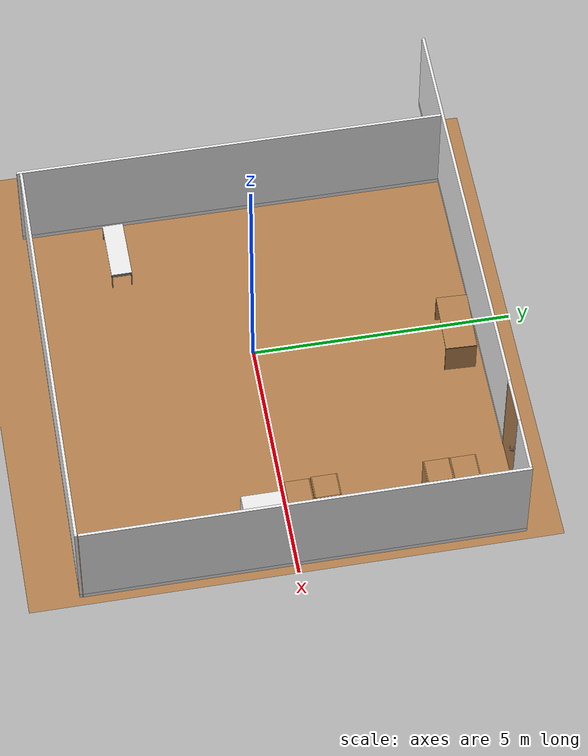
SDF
<sdf version="1.6">
 <world name="default">
  <include><uri>model://sun</uri></include>
  <physics type="ode"/>
  <scene><ambient>0.4 0.4 0.4 1</ambient><background>0.7 0.7 0.7 1</background><shadows>0</shadows></scene>
  <model name="wrc_ground_plane">
   <static>1</static>
   <link name="link">
    <collision name="collision">
     <geometry><plane><normal>0 0 1</normal><size>10 10</size></plane></geometry>
     <surface>
      <contact><collide_bitmask>65535</collide_bitmask></contact>
      <friction><ode><mu>100</mu><mu2>50</mu2></ode></friction>
     </surface>
    </collision>
    <visual name="visual">
     <cast_shadows>0</cast_shadows>
     <geometry><plane><normal>0 0 1</normal><size>10 10</size></plane></geometry>
     <material>
      <script><uri>model://wrc_ground_plane/materials/wood.material</uri><name>WRS/WoodFloor</name></script>
     </material>
    </visual>
   </link>
  </model>
  <model name="wrc_bookshelf">
   <static>1</static>
   <link name="link">
    <inertial><mass>1</mass></inertial>
    <collision name="back">
     <pose>0 0.005 1.01 0 -0 0</pose>
     <geometry><box><size>0.8 0.01 2.02</size></box></geometry>
    </collision>
    <visual name="back_v">
     <pose>0 0.14 1.01 0 -0 0</pose>
     <geometry><box><size>0.8 0.01 2.02</size></box></geometry>
     <material>
      <script><uri>file://media/materials/scripts/gazebo.material</uri><name>Gazebo/White</name></script>
     </material>
    </visual>
    <collision name="left_side">
     <pose>0.4 0 1.01 0 -0 0</pose>
     <geometry><box><size>0.02 0.28 2.02</size></box></geometry>
    </collision>
    <visual name="left_side_v">
     <pose>0.4 0 1.01 0 -0 0</pose>
     <geometry><box><size>0.02 0.28 2.02</size></box></geometry>
     <material>
      <script><uri>file://media/materials/scripts/gazebo.material</uri><name>Gazebo/White</name></script>
     </material>
    </visual>
    <collision name="right_side">
     <pose>-0.4 0 1.01 0 -0 0</pose>
     <geometry><box><size>0.02 0.28 2.02</size></box></geometry>
    </collision>
    <visual name="right_side_v">
     <pose>-0.4 0 1.01 0 -0 0</pose>
     <geometry><box><size>0.02 0.28 2.02</size></box></geometry>
     <material>
      <script><uri>file://media/materials/scripts/gazebo.material</uri><name>Gazebo/White</name></script>
     </material>
    </visual>
    <collision name="bottom">
     <pose>0 0 0.03 0 -0 0</pose>
     <geometry><box><size>0.8 0.28 0.06</size></box></geometry>
    </collision>
    <visual name="bottom_v">
     <pose>0 0 0.03 0 -0 0</pose>
     <geometry><box><size>0.8 0.28 0.06</size></box></geometry>
     <material>
      <script><uri>file://media/materials/scripts/gazebo.material</uri><name>Gazebo/White</name></script>
     </material>
    </visual>
    <collision name="top">
     <pose>0 0 2.01 0 -0 0</pose>
     <geometry><box><size>0.8 0.28 0.02</size></box></geometry>
    </collision>
    <visual name="top_v">
     <pose>0 0 2.01 0 -0 0</pose>
     <geometry><box><size>0.8 0.28 0.02</size></box></geometry>
     <material>
      <script><uri>file://media/materials/scripts/gazebo.material</uri><name>Gazebo/White</name></script>
     </material>
    </visual>
    <collision name="slit1">
     <pose>0 0 0.49 0 -0 0</pose>
     <geometry><box><size>0.8 0.28 0.02</size></box></geometry>
    </collision>
    <visual name="slit1_v">
     <pose>0 0 0.49 0 -0 0</pose>
     <geometry><box><size>0.8 0.28 0.02</size></box></geometry>
     <material>
      <script><uri>file://media/materials/scripts/gazebo.material</uri><name>Gazebo/White</name></script>
     </material>
    </visual>
    <collision name="slit2">
     <pose>0 0 0.79 0 -0 0</pose>
     <geometry><box><size>0.8 0.28 0.02</size></box></geometry>
    </collision>
    <visual name="slit2_v">
     <pose>0 0 0.79 0 -0 0</pose>
     <geometry><box><size>0.8 0.28 0.02</size></box></geometry>
     <material>
      <script><uri>file://media/materials/scripts/gazebo.material</uri><name>Gazebo/White</name></script>
     </material>
    </visual>
    <collision name="slit3">
     <pose>0 0 1.04 0 -0 0</pose>
     <geometry><box><size>0.8 0.28 0.02</size></box></geometry>
    </collision>
    <visual name="slit3_v">
     <pose>0 0 1.04 0 -0 0</pose>
     <geometry><box><size>0.8 0.28 0.02</size></box></geometry>
     <material>
      <script><uri>file://media/materials/scripts/gazebo.material</uri><name>Gazebo/White</name></script>
     </material>
    </visual>
   </link>
   <pose>4.60244 -0.572328 0 0 0 -1.57</pose>
  </model>
  <model name="wrc_long_table_0">
   <static>1</static>
   <link name="link">
    <inertial><mass>1</mass></inertial>
    <collision name="top">
     <pose>0 0 0.39 0 -0 0</pose>
     <geometry><box><size>1.2 0.4 0.02</size></box></geometry>
    </collision>
    <visual name="top_v">
     <pose>0 0 0.39 0 -0 0</pose>
     <geometry><box><size>1.2 0.4 0.02</size></box></geometry>
     <material>
      <script><uri>file://media/materials/scripts/gazebo.material</uri><name>Gazebo/White</name></script>
     </material>
    </visual>
    <collision name="leg1">
     <pose>0.59 0.19 0.185 0 -0 0</pose>
     <geometry><box><size>0.02 0.02 0.4</size></box></geometry>
    </collision>
    <visual name="leg1_v">
     <pose>0.59 0.19 0.185 0 -0 0</pose>
     <geometry><box><size>0.02 0.02 0.4</size></box></geometry>
     <material>
      <script><uri>file://media/materials/scripts/gazebo.material</uri><name>Gazebo/Gray</name></script>
     </material>
    </visual>
    <collision name="leg2">
     <pose>-0.59 0.19 0.185 0 -0 0</pose>
     <geometry><box><size>0.02 0.02 0.4</size></box></geometry>
    </collision>
    <visual name="leg2_v">
     <pose>-0.59 0.19 0.185 0 -0 0</pose>
     <geometry><box><size>0.02 0.02 0.4</size></box></geometry>
     <material>
      <script><uri>file://media/materials/scripts/gazebo.material</uri><name>Gazebo/Gray</name></script>
     </material>
    </visual>
    <collision name="leg3">
     <pose>0.59 -0.19 0.185 0 -0 0</pose>
     <geometry><box><size>0.02 0.02 0.4</size></box></geometry>
    </collision>
    <visual name="leg3_v">
     <pose>0.59 -0.19 0.185 0 -0 0</pose>
     <geometry><box><size>0.02 0.02 0.4</size></box></geometry>
     <material>
      <script><uri>file://media/materials/scripts/gazebo.material</uri><name>Gazebo/Gray</name></script>
     </material>
    </visual>
    <collision name="leg4">
     <pose>-0.59 -0.19 0.185 0 -0 0</pose>
     <geometry><box><size>0.02 0.02 0.4</size></box></geometry>
    </collision>
    <visual name="leg4_v">
     <pose>-0.59 -0.19 0.185 0 -0 0</pose>
     <geometry><box><size>0.02 0.02 0.4</size></box></geometry>
     <material>
      <script><uri>file://media/materials/scripts/gazebo.material</uri><name>Gazebo/Gray</name></script>
     </material>
    </visual>
    <collision name="side_panel1">
     <pose>0.575 0 0.32 0 -0 0</pose>
     <geometry><box><size>0.01 0.4 0.04</size></box></geometry>
    </collision>
    <visual name="side_panel1_v">
     <pose>0.575 0 0.32 0 -0 0</pose>
     <geometry><box><size>0.01 0.4 0.04</size></box></geometry>
     <material>
      <script><uri>file://media/materials/scripts/gazebo.material</uri><name>Gazebo/Gray</name></script>
     </material>
    </visual>
    <collision name="side_panel2">
     <pose>-0.575 0 0.32 0 -0 0</pose>
     <geometry><box><size>0.01 0.4 0.04</size></box></geometry>
    </collision>
    <visual name="side_panel2_v">
     <pose>-0.575 0 0.32 0 -0 0</pose>
     <geometry><box><size>0.01 0.4 0.04</size></box></geometry>
     <material>
      <script><uri>file://media/materials/scripts/gazebo.material</uri><name>Gazebo/Gray</name></script>
     </material>
    </visual>
    <collision name="bar1">
     <pose>0 0.2 0.29 0 1.57 0</pose>
     <geometry><cylinder><radius>0.01</radius><length>1.16</length></cylinder></geometry>
    </collision>
    <visual name="bar1_v">
     <pose>0 0.19 0.29 0 1.57 0</pose>
     <geometry><cylinder><radius>0.01</radius><length>1.16</length></cylinder></geometry>
     <material>
      <script><uri>file://media/materials/scripts/gazebo.material</uri><name>Gazebo/Gray</name></script>
     </material>
    </visual>
    <collision name="bar2">
     <pose>0 0.08 0.29 0 1.57 0</pose>
     <geometry><cylinder><radius>0.01</radius><length>1.16</length></cylinder></geometry>
    </collision>
    <visual name="bar2_v">
     <pose>0 0.08 0.29 0 1.57 0</pose>
     <geometry><cylinder><radius>0.01</radius><length>1.16</length></cylinder></geometry>
     <material>
      <script><uri>file://media/materials/scripts/gazebo.material</uri><name>Gazebo/Gray</name></script>
     </material>
    </visual>
    <collision name="bar3">
     <pose>0 0 0.29 0 1.57 0</pose>
     <geometry><cylinder><radius>0.01</radius><length>1.16</length></cylinder></geometry>
    </collision>
    <visual name="bar3_v">
     <pose>0 0 0.29 0 1.57 0</pose>
     <geometry><cylinder><radius>0.01</radius><length>1.16</length></cylinder></geometry>
     <material>
      <script><uri>file://media/materials/scripts/gazebo.material</uri><name>Gazebo/Gray</name></script>
     </material>
    </visual>
    <collision name="bar4">
     <pose>0 -0.08 0.29 0 1.57 0</pose>
     <geometry><cylinder><radius>0.01</radius><length>1.16</length></cylinder></geometry>
    </collision>
    <visual name="bar4_v">
     <pose>0 -0.09 0.29 0 1.57 0</pose>
     <geometry><cylinder><radius>0.01</radius><length>1.16</length></cylinder></geometry>
     <material>
      <script><uri>file://media/materials/scripts/gazebo.material</uri><name>Gazebo/Gray</name></script>
     </material>
    </visual>
    <collision name="bar5">
     <pose>0 -0.18 0.29 0 1.57 0</pose>
     <geometry><cylinder><radius>0.01</radius><length>1.16</length></cylinder></geometry>
    </collision>
    <visual name="bar5_v">
     <pose>0 -0.18 0.29 0 1.57 0</pose>
     <geometry><cylinder><radius>0.01</radius><length>1.16</length></cylinder></geometry>
     <material>
      <script><uri>file://media/materials/scripts/gazebo.material</uri><name>Gazebo/Gray</name></script>
     </material>
    </visual>
   </link>
   <pose>-2.60489 -2.2474 0 0 -0 0.005816</pose>
  </model>
  <magnetic_field>6e-06 2.3e-05 -4.2e-05</magnetic_field>
  <atmosphere type="adiabatic"/>
  <spherical_coordinates>
   <surface_model>EARTH_WGS84</surface_model>
   <latitude_deg>0</latitude_deg>
   <longitude_deg>0</longitude_deg>
   <elevation>0</elevation>
   <heading_deg>0</heading_deg>
  </spherical_coordinates>
  <model name="full_wall_55_8295_2090">
   <link name="link">
    <inertial>
     <mass>50</mass>
     <inertia><ixx>1</ixx><ixy>0</ixy><ixz>0</ixz><iyy>1</iyy><iyz>0</iyz><izz>1</izz></inertia>
    </inertial>
    <visual name="bottom_frame">
     <pose>0 0 0.05 0 -0 0</pose>
     <geometry><box><size>0.055 8.295 0.1</size></box></geometry>
     <material>
      <script><uri>model://base_materials/color/scripts</uri><name>hsr_color/white</name></script>
     </material>
    </visual>
    <collision name="collision_bottom_frame">
     <pose>0 0 0.05 0 -0 0</pose>
     <geometry><box><size>0.055 8.295 0.1</size></box></geometry>
    </collision>
    <visual name="wall">
     <pose>0 0 1.095 0 -0 0</pose>
     <geometry><box><size>0.055 8.295 1.99</size></box></geometry>
     <material>
      <script>
       <uri>model://base_materials/wall/scripts</uri>
       <uri>model://base_materials/wall/textures</uri>
       <name>wall/white_noise</name>
      </script>
     </material>
    </visual>
    <collision name="collision_wall">
     <pose>0 0 1.095 0 -0 0</pose>
     <geometry><box><size>0.055 8.295 1.99</size></box></geometry>
    </collision>
    <velocity_decay><linear>0</linear><angular>0</angular></velocity_decay>
   </link>
   <static>1</static>
   <pose>4.81252 0.172211 0 0 -0 0</pose>
  </model>
  <model name="cabinet_0">
   <static>1</static>
   <link name="cabinet_bottom_plate">
    <inertial>
     <pose>0 0 -1 0 -0 0</pose>
     <inertia><ixx>2.05</ixx><ixy>0</ixy><ixz>0</ixz><iyy>2.05</iyy><iyz>0</iyz><izz>2.05</izz></inertia>
     <mass>25</mass>
    </inertial>
    <collision name="cabinet_bottom_plate_geom">
     <pose>0 0 0.01 0 -0 0</pose>
     <geometry><box><size>0.45 0.45 0.02</size></box></geometry>
    </collision>
    <visual name="cabinet_bottom_plate_geom_visual">
     <pose>0 0 0.01 0 -0 0</pose>
     <geometry><box><size>0.45 0.45 0.02</size></box></geometry>
     <material>
      <script><uri>file://media/materials/scripts/gazebo.material</uri><name>Gazebo/Wood</name></script>
     </material>
    </visual>
    <collision name="cabinet_bottom_plate_geom_cabinet_back_plate">
     <pose>0.235 0 0.51 0 -0 0</pose>
     <geometry><box><size>0.02 0.45 1.02</size></box></geometry>
    </collision>
    <visual name="cabinet_bottom_plate_geom_cabinet_back_plate_visual">
     <pose>0.235 0 0.51 0 -0 0</pose>
     <geometry><box><size>0.02 0.45 1.02</size></box></geometry>
     <material>
      <script><uri>file://media/materials/scripts/gazebo.material</uri><name>Gazebo/Wood</name></script>
     </material>
    </visual>
    <collision name="cabinet_bottom_plate_geom_cabinet_left_plate">
     <pose>0 0.235 0.51 0 -0 0</pose>
     <geometry><box><size>0.45 0.02 1.02</size></box></geometry>
    </collision>
    <visual name="cabinet_bottom_plate_geom_cabinet_left_plate_visual">
     <pose>0 0.235 0.51 0 -0 0</pose>
     <geometry><box><size>0.45 0.02 1.02</size></box></geometry>
     <material>
      <script><uri>file://media/materials/scripts/gazebo.material</uri><name>Gazebo/Wood</name></script>
     </material>
    </visual>
    <collision name="cabinet_bottom_plate_geom_cabinet_middle_plate">
     <pose>0 0 0.51 0 -0 0</pose>
     <geometry><box><size>0.45 0.45 0.02</size></box></geometry>
    </collision>
    <visual name="cabinet_bottom_plate_geom_cabinet_middle_plate_visual">
     <pose>0 0 0.51 0 -0 0</pose>
     <geometry><box><size>0.45 0.45 0.02</size></box></geometry>
     <material>
      <script><uri>file://media/materials/scripts/gazebo.material</uri><name>Gazebo/Wood</name></script>
     </material>
    </visual>
    <collision name="cabinet_bottom_plate_geom_cabinet_right_plate">
     <pose>0 -0.235 0.51 0 -0 0</pose>
     <geometry><box><size>0.45 0.02 1.02</size></box></geometry>
    </collision>
    <visual name="cabinet_bottom_plate_geom_cabinet_right_plate_visual">
     <pose>0 -0.235 0.51 0 -0 0</pose>
     <geometry><box><size>0.45 0.02 1.02</size></box></geometry>
     <material>
      <script><uri>file://media/materials/scripts/gazebo.material</uri><name>Gazebo/Wood</name></script>
     </material>
    </visual>
    <collision name="cabinet_bottom_plate_geom_cabinet_top_plate">
     <pose>0 0 1.01 0 -0 0</pose>
     <geometry><box><size>0.45 0.45 0.02</size></box></geometry>
    </collision>
    <visual name="cabinet_bottom_plate_geom_cabinet_top_plate_visual">
     <pose>0 0 1.01 0 -0 0</pose>
     <geometry><box><size>0.45 0.45 0.02</size></box></geometry>
     <material>
      <script><uri>file://media/materials/scripts/gazebo.material</uri><name>Gazebo/Wood</name></script>
     </material>
    </visual>
   </link>
   <pose>4.53083 3.12983 0 0 -0 0</pose>
  </model>
  <model name="cabinet_1">
   <static>1</static>
   <link name="cabinet_bottom_plate">
    <inertial>
     <pose>0 0 -1 0 -0 0</pose>
     <inertia><ixx>2.05</ixx><ixy>0</ixy><ixz>0</ixz><iyy>2.05</iyy><iyz>0</iyz><izz>2.05</izz></inertia>
     <mass>25</mass>
    </inertial>
    <collision name="cabinet_bottom_plate_geom">
     <pose>0 0 0.01 0 -0 0</pose>
     <geometry><box><size>0.45 0.45 0.02</size></box></geometry>
    </collision>
    <visual name="cabinet_bottom_plate_geom_visual">
     <pose>0 0 0.01 0 -0 0</pose>
     <geometry><box><size>0.45 0.45 0.02</size></box></geometry>
     <material>
      <script><uri>file://media/materials/scripts/gazebo.material</uri><name>Gazebo/Wood</name></script>
     </material>
    </visual>
    <collision name="cabinet_bottom_plate_geom_cabinet_back_plate">
     <pose>0.235 0 0.51 0 -0 0</pose>
     <geometry><box><size>0.02 0.45 1.02</size></box></geometry>
    </collision>
    <visual name="cabinet_bottom_plate_geom_cabinet_back_plate_visual">
     <pose>0.235 0 0.51 0 -0 0</pose>
     <geometry><box><size>0.02 0.45 1.02</size></box></geometry>
     <material>
      <script><uri>file://media/materials/scripts/gazebo.material</uri><name>Gazebo/Wood</name></script>
     </material>
    </visual>
    <collision name="cabinet_bottom_plate_geom_cabinet_left_plate">
     <pose>0 0.235 0.51 0 -0 0</pose>
     <geometry><box><size>0.45 0.02 1.02</size></box></geometry>
    </collision>
    <visual name="cabinet_bottom_plate_geom_cabinet_left_plate_visual">
     <pose>0 0.235 0.51 0 -0 0</pose>
     <geometry><box><size>0.45 0.02 1.02</size></box></geometry>
     <material>
      <script><uri>file://media/materials/scripts/gazebo.material</uri><name>Gazebo/Wood</name></script>
     </material>
    </visual>
    <collision name="cabinet_bottom_plate_geom_cabinet_middle_plate">
     <pose>0 0 0.51 0 -0 0</pose>
     <geometry><box><size>0.45 0.45 0.02</size></box></geometry>
    </collision>
    <visual name="cabinet_bottom_plate_geom_cabinet_middle_plate_visual">
     <pose>0 0 0.51 0 -0 0</pose>
     <geometry><box><size>0.45 0.45 0.02</size></box></geometry>
     <material>
      <script><uri>file://media/materials/scripts/gazebo.material</uri><name>Gazebo/Wood</name></script>
     </material>
    </visual>
    <collision name="cabinet_bottom_plate_geom_cabinet_right_plate">
     <pose>0 -0.235 0.51 0 -0 0</pose>
     <geometry><box><size>0.45 0.02 1.02</size></box></geometry>
    </collision>
    <visual name="cabinet_bottom_plate_geom_cabinet_right_plate_visual">
     <pose>0 -0.235 0.51 0 -0 0</pose>
     <geometry><box><size>0.45 0.02 1.02</size></box></geometry>
     <material>
      <script><uri>file://media/materials/scripts/gazebo.material</uri><name>Gazebo/Wood</name></script>
     </material>
    </visual>
    <collision name="cabinet_bottom_plate_geom_cabinet_top_plate">
     <pose>0 0 1.01 0 -0 0</pose>
     <geometry><box><size>0.45 0.45 0.02</size></box></geometry>
    </collision>
    <visual name="cabinet_bottom_plate_geom_cabinet_top_plate_visual">
     <pose>0 0 1.01 0 -0 0</pose>
     <geometry><box><size>0.45 0.45 0.02</size></box></geometry>
     <material>
      <script><uri>file://media/materials/scripts/gazebo.material</uri><name>Gazebo/Wood</name></script>
     </material>
    </visual>
   </link>
   <pose>4.53144 3.12883 1.02053 0 -0 0</pose>
  </model>
  <model name="cabinet_1_clone">
   <static>1</static>
   <link name="cabinet_bottom_plate">
    <inertial>
     <pose>0 0 -1 0 -0 0</pose>
     <inertia><ixx>2.05</ixx><ixy>0</ixy><ixz>0</ixz><iyy>2.05</iyy><iyz>0</iyz><izz>2.05</izz></inertia>
     <mass>25</mass>
    </inertial>
    <collision name="cabinet_bottom_plate_geom">
     <pose>0 0 0.01 0 -0 0</pose>
     <geometry><box><size>0.45 0.45 0.02</size></box></geometry>
    </collision>
    <visual name="cabinet_bottom_plate_geom_visual">
     <pose>0 0 0.01 0 -0 0</pose>
     <geometry><box><size>0.45 0.45 0.02</size></box></geometry>
     <material>
      <script><uri>file://media/materials/scripts/gazebo.material</uri><name>Gazebo/Wood</name></script>
     </material>
    </visual>
    <collision name="cabinet_bottom_plate_geom_cabinet_back_plate">
     <pose>0.235 0 0.51 0 -0 0</pose>
     <geometry><box><size>0.02 0.45 1.02</size></box></geometry>
    </collision>
    <visual name="cabinet_bottom_plate_geom_cabinet_back_plate_visual">
     <pose>0.235 0 0.51 0 -0 0</pose>
     <geometry><box><size>0.02 0.45 1.02</size></box></geometry>
     <material>
      <script><uri>file://media/materials/scripts/gazebo.material</uri><name>Gazebo/Wood</name></script>
     </material>
    </visual>
    <collision name="cabinet_bottom_plate_geom_cabinet_left_plate">
     <pose>0 0.235 0.51 0 -0 0</pose>
     <geometry><box><size>0.45 0.02 1.02</size></box></geometry>
    </collision>
    <visual name="cabinet_bottom_plate_geom_cabinet_left_plate_visual">
     <pose>0 0.235 0.51 0 -0 0</pose>
     <geometry><box><size>0.45 0.02 1.02</size></box></geometry>
     <material>
      <script><uri>file://media/materials/scripts/gazebo.material</uri><name>Gazebo/Wood</name></script>
     </material>
    </visual>
    <collision name="cabinet_bottom_plate_geom_cabinet_middle_plate">
     <pose>0 0 0.51 0 -0 0</pose>
     <geometry><box><size>0.45 0.45 0.02</size></box></geometry>
    </collision>
    <visual name="cabinet_bottom_plate_geom_cabinet_middle_plate_visual">
     <pose>0 0 0.51 0 -0 0</pose>
     <geometry><box><size>0.45 0.45 0.02</size></box></geometry>
     <material>
      <script><uri>file://media/materials/scripts/gazebo.material</uri><name>Gazebo/Wood</name></script>
     </material>
    </visual>
    <collision name="cabinet_bottom_plate_geom_cabinet_right_plate">
     <pose>0 -0.235 0.51 0 -0 0</pose>
     <geometry><box><size>0.45 0.02 1.02</size></box></geometry>
    </collision>
    <visual name="cabinet_bottom_plate_geom_cabinet_right_plate_visual">
     <pose>0 -0.235 0.51 0 -0 0</pose>
     <geometry><box><size>0.45 0.02 1.02</size></box></geometry>
     <material>
      <script><uri>file://media/materials/scripts/gazebo.material</uri><name>Gazebo/Wood</name></script>
     </material>
    </visual>
    <collision name="cabinet_bottom_plate_geom_cabinet_top_plate">
     <pose>0 0 1.01 0 -0 0</pose>
     <geometry><box><size>0.45 0.45 0.02</size></box></geometry>
    </collision>
    <visual name="cabinet_bottom_plate_geom_cabinet_top_plate_visual">
     <pose>0 0 1.01 0 -0 0</pose>
     <geometry><box><size>0.45 0.45 0.02</size></box></geometry>
     <material>
      <script><uri>file://media/materials/scripts/gazebo.material</uri><name>Gazebo/Wood</name></script>
     </material>
    </visual>
   </link>
   <pose>4.5262 2.64398 1.02053 0 -0 0</pose>
  </model>
  <model name="cabinet_0_clone">
   <static>1</static>
   <link name="cabinet_bottom_plate">
    <inertial>
     <pose>0 0 -1 0 -0 0</pose>
     <inertia><ixx>2.05</ixx><ixy>0</ixy><ixz>0</ixz><iyy>2.05</iyy><iyz>0</iyz><izz>2.05</izz></inertia>
     <mass>25</mass>
    </inertial>
    <collision name="cabinet_bottom_plate_geom">
     <pose>0 0 0.01 0 -0 0</pose>
     <geometry><box><size>0.45 0.45 0.02</size></box></geometry>
    </collision>
    <visual name="cabinet_bottom_plate_geom_visual">
     <pose>0 0 0.01 0 -0 0</pose>
     <geometry><box><size>0.45 0.45 0.02</size></box></geometry>
     <material>
      <script><uri>file://media/materials/scripts/gazebo.material</uri><name>Gazebo/Wood</name></script>
     </material>
    </visual>
    <collision name="cabinet_bottom_plate_geom_cabinet_back_plate">
     <pose>0.235 0 0.51 0 -0 0</pose>
     <geometry><box><size>0.02 0.45 1.02</size></box></geometry>
    </collision>
    <visual name="cabinet_bottom_plate_geom_cabinet_back_plate_visual">
     <pose>0.235 0 0.51 0 -0 0</pose>
     <geometry><box><size>0.02 0.45 1.02</size></box></geometry>
     <material>
      <script><uri>file://media/materials/scripts/gazebo.material</uri><name>Gazebo/Wood</name></script>
     </material>
    </visual>
    <collision name="cabinet_bottom_plate_geom_cabinet_left_plate">
     <pose>0 0.235 0.51 0 -0 0</pose>
     <geometry><box><size>0.45 0.02 1.02</size></box></geometry>
    </collision>
    <visual name="cabinet_bottom_plate_geom_cabinet_left_plate_visual">
     <pose>0 0.235 0.51 0 -0 0</pose>
     <geometry><box><size>0.45 0.02 1.02</size></box></geometry>
     <material>
      <script><uri>file://media/materials/scripts/gazebo.material</uri><name>Gazebo/Wood</name></script>
     </material>
    </visual>
    <collision name="cabinet_bottom_plate_geom_cabinet_middle_plate">
     <pose>0 0 0.51 0 -0 0</pose>
     <geometry><box><size>0.45 0.45 0.02</size></box></geometry>
    </collision>
    <visual name="cabinet_bottom_plate_geom_cabinet_middle_plate_visual">
     <pose>0 0 0.51 0 -0 0</pose>
     <geometry><box><size>0.45 0.45 0.02</size></box></geometry>
     <material>
      <script><uri>file://media/materials/scripts/gazebo.material</uri><name>Gazebo/Wood</name></script>
     </material>
    </visual>
    <collision name="cabinet_bottom_plate_geom_cabinet_right_plate">
     <pose>0 -0.235 0.51 0 -0 0</pose>
     <geometry><box><size>0.45 0.02 1.02</size></box></geometry>
    </collision>
    <visual name="cabinet_bottom_plate_geom_cabinet_right_plate_visual">
     <pose>0 -0.235 0.51 0 -0 0</pose>
     <geometry><box><size>0.45 0.02 1.02</size></box></geometry>
     <material>
      <script><uri>file://media/materials/scripts/gazebo.material</uri><name>Gazebo/Wood</name></script>
     </material>
    </visual>
    <collision name="cabinet_bottom_plate_geom_cabinet_top_plate">
     <pose>0 0 1.01 0 -0 0</pose>
     <geometry><box><size>0.45 0.45 0.02</size></box></geometry>
    </collision>
    <visual name="cabinet_bottom_plate_geom_cabinet_top_plate_visual">
     <pose>0 0 1.01 0 -0 0</pose>
     <geometry><box><size>0.45 0.45 0.02</size></box></geometry>
     <material>
      <script><uri>file://media/materials/scripts/gazebo.material</uri><name>Gazebo/Wood</name></script>
     </material>
    </visual>
   </link>
   <pose>4.52869 2.64207 0 0 -0 0</pose>
  </model>
  <model name="office_desk">
   <link name="link">
    <inertial>
     <mass>10</mass>
     <inertia><ixx>1</ixx><ixy>0</ixy><ixz>0</ixz><iyy>1</iyy><iyz>0</iyz><izz>1</izz></inertia>
    </inertial>
    <visual name="top_board">
     <pose>-0.3 0.6 0.69 0 -0 0</pose>
     <geometry><box><size>0.6 1.2 0.02</size></box></geometry>
     <material>
      <script>
       <uri>model://base_materials/wood/scripts/wood.material</uri>
       <name>base_materials/dark_wood</name>
      </script>
     </material>
    </visual>
    <collision name="collision_top_board">
     <pose>-0.3 0.6 0.69 0 -0 0</pose>
     <geometry><box><size>0.6 1.2 0.02</size></box></geometry>
    </collision>
    <visual name="left_board">
     <pose>-0.3 0.01 0.34 0 -0 0</pose>
     <geometry><box><size>0.6 0.02 0.68</size></box></geometry>
     <material>
      <script>
       <uri>model://base_materials/wood/scripts/wood.material</uri>
       <name>base_materials/dark_wood</name>
      </script>
     </material>
    </visual>
    <collision name="collision_left_board">
     <pose>-0.3 0.01 0.34 0 -0 0</pose>
     <geometry><box><size>0.6 0.02 0.68</size></box></geometry>
    </collision>
    <visual name="right_board">
     <pose>-0.3 1.19 0.34 0 -0 0</pose>
     <geometry><box><size>0.6 0.02 0.68</size></box></geometry>
     <material>
      <script>
       <uri>model://base_materials/wood/scripts/wood.material</uri>
       <name>base_materials/dark_wood</name>
      </script>
     </material>
    </visual>
    <collision name="collision_right_board">
     <pose>-0.3 1.19 0.34 0 -0 0</pose>
     <geometry><box><size>0.6 0.02 0.68</size></box></geometry>
    </collision>
    <visual name="center_board">
     <pose>-0.14 0.6 0.49 0 -0 0</pose>
     <geometry><box><size>0.02 1.16 0.4</size></box></geometry>
     <material>
      <script>
       <uri>model://base_materials/wood/scripts/wood.material</uri>
       <name>base_materials/dark_wood</name>
      </script>
     </material>
    </visual>
    <collision name="ollision_center_board">
     <pose>-0.14 0.6 0.49 0 -0 0</pose>
     <geometry><box><size>0.02 1.16 0.4</size></box></geometry>
    </collision>
    <velocity_decay><linear>0</linear><angular>0</angular></velocity_decay>
   </link>
   <static>1</static>
   <pose>4.57359 1.12528 0 0 -0 0</pose>
  </model>
  <model name="full_wall_55_8295_2090_clone">
   <link name="link">
    <inertial>
     <mass>50</mass>
     <inertia><ixx>1</ixx><ixy>0</ixy><ixz>0</ixz><iyy>1</iyy><iyz>0</iyz><izz>1</izz></inertia>
    </inertial>
    <visual name="bottom_frame">
     <pose>0 0 0.05 0 -0 0</pose>
     <geometry><box><size>0.055 8.295 0.1</size></box></geometry>
     <material>
      <script><uri>model://base_materials/color/scripts</uri><name>hsr_color/white</name></script>
     </material>
    </visual>
    <collision name="collision_bottom_frame">
     <pose>0 0 0.05 0 -0 0</pose>
     <geometry><box><size>0.055 8.295 0.1</size></box></geometry>
    </collision>
    <visual name="wall">
     <pose>0 0 1.095 0 -0 0</pose>
     <geometry><box><size>0.055 8.295 1.99</size></box></geometry>
     <material>
      <script>
       <uri>model://base_materials/wall/scripts</uri>
       <uri>model://base_materials/wall/textures</uri>
       <name>wall/white_noise</name>
      </script>
     </material>
    </visual>
    <collision name="collision_wall">
     <pose>0 0 1.095 0 -0 0</pose>
     <geometry><box><size>0.055 8.295 1.99</size></box></geometry>
    </collision>
    <velocity_decay><linear>0</linear><angular>0</angular></velocity_decay>
   </link>
   <static>1</static>
   <pose>-1.30065 4.31927 0 0 0 -1.57365</pose>
  </model>
  <model name="full_wall_55_900_2090">
   <link name="link">
    <inertial>
     <mass>50</mass>
     <inertia><ixx>1</ixx><ixy>0</ixy><ixz>0</ixz><iyy>1</iyy><iyz>0</iyz><izz>1</izz></inertia>
    </inertial>
    <visual name="bottom_frame">
     <pose>0 0 0.05 0 -0 0</pose>
     <geometry><box><size>0.055 1.04 0.1</size></box></geometry>
     <material>
      <script><uri>model://base_materials/color/scripts</uri><name>hsr_color/white</name></script>
     </material>
    </visual>
    <collision name="collision_bottom_frame">
     <pose>0 0 0.05 0 -0 0</pose>
     <geometry><box><size>0.055 1.04 0.1</size></box></geometry>
    </collision>
    <visual name="wall">
     <pose>0 0 1.095 0 -0 0</pose>
     <geometry><box><size>0.055 1.04 1.99</size></box></geometry>
     <material>
      <script>
       <uri>model://base_materials/wall/scripts</uri>
       <uri>model://base_materials/wall/textures</uri>
       <name>wall/white_noise</name>
      </script>
     </material>
    </visual>
    <collision name="collision_wall">
     <pose>0 0 1.095 0 -0 0</pose>
     <geometry><box><size>0.055 1.04 1.99</size></box></geometry>
    </collision>
    <velocity_decay><linear>0</linear><angular>0</angular></velocity_decay>
   </link>
   <static>1</static>
   <pose>4.26859 4.29665 0 0 -0 1.56253</pose>
  </model>
  <model name="full_wall_55_8295_2090_0">
   <link name="link">
    <inertial>
     <mass>50</mass>
     <inertia><ixx>1</ixx><ixy>0</ixy><ixz>0</ixz><iyy>1</iyy><iyz>0</iyz><izz>1</izz></inertia>
    </inertial>
    <visual name="bottom_frame">
     <pose>0 0 0.05 0 -0 0</pose>
     <geometry><box><size>0.055 8.295 0.1</size></box></geometry>
     <material>
      <script><uri>model://base_materials/color/scripts</uri><name>hsr_color/white</name></script>
     </material>
    </visual>
    <collision name="collision_bottom_frame">
     <pose>0 0 0.05 0 -0 0</pose>
     <geometry><box><size>0.055 8.295 0.1</size></box></geometry>
    </collision>
    <visual name="wall">
     <pose>0 0 1.095 0 -0 0</pose>
     <geometry><box><size>0.055 8.295 1.99</size></box></geometry>
     <material>
      <script>
       <uri>model://base_materials/wall/scripts</uri>
       <uri>model://base_materials/wall/textures</uri>
       <name>wall/white_noise</name>
      </script>
     </material>
    </visual>
    <collision name="collision_wall">
     <pose>0 0 1.095 0 -0 0</pose>
     <geometry><box><size>0.055 8.295 1.99</size></box></geometry>
    </collision>
    <velocity_decay><linear>0</linear><angular>0</angular></velocity_decay>
   </link>
   <static>1</static>
   <pose>0.687285 -3.96616 0 0 0 -1.58277</pose>
  </model>
  <model name="full_wall_55_8295_2090_1">
   <link name="link">
    <inertial>
     <mass>50</mass>
     <inertia><ixx>1</ixx><ixy>0</ixy><ixz>0</ixz><iyy>1</iyy><iyz>0</iyz><izz>1</izz></inertia>
    </inertial>
    <visual name="bottom_frame">
     <pose>0 0 0.05 0 -0 0</pose>
     <geometry><box><size>0.055 8.295 0.1</size></box></geometry>
     <material>
      <script><uri>model://base_materials/color/scripts</uri><name>hsr_color/white</name></script>
     </material>
    </visual>
    <collision name="collision_bottom_frame">
     <pose>0 0 0.05 0 -0 0</pose>
     <geometry><box><size>0.055 8.295 0.1</size></box></geometry>
    </collision>
    <visual name="wall">
     <pose>0 0 1.095 0 -0 0</pose>
     <geometry><box><size>0.055 8.295 1.99</size></box></geometry>
     <material>
      <script>
       <uri>model://base_materials/wall/scripts</uri>
       <uri>model://base_materials/wall/textures</uri>
       <name>wall/white_noise</name>
      </script>
     </material>
    </visual>
    <collision name="collision_wall">
     <pose>0 0 1.095 0 -0 0</pose>
     <geometry><box><size>0.055 8.295 1.99</size></box></geometry>
    </collision>
    <velocity_decay><linear>0</linear><angular>0</angular></velocity_decay>
   </link>
   <static>1</static>
   <pose>-3.4877 0.144746 0 0 -0 0</pose>
  </model>
  <model name="office_desk_clone">
   <link name="link">
    <inertial>
     <mass>10</mass>
     <inertia><ixx>1</ixx><ixy>0</ixy><ixz>0</ixz><iyy>1</iyy><iyz>0</iyz><izz>1</izz></inertia>
    </inertial>
    <visual name="top_board">
     <pose>-0.3 0.6 0.69 0 -0 0</pose>
     <geometry><box><size>0.6 1.2 0.02</size></box></geometry>
     <material>
      <script>
       <uri>model://base_materials/wood/scripts/wood.material</uri>
       <name>base_materials/dark_wood</name>
      </script>
     </material>
    </visual>
    <collision name="collision_top_board">
     <pose>-0.3 0.6 0.69 0 -0 0</pose>
     <geometry><box><size>0.6 1.2 0.02</size></box></geometry>
    </collision>
    <visual name="left_board">
     <pose>-0.3 0.01 0.34 0 -0 0</pose>
     <geometry><box><size>0.6 0.02 0.68</size></box></geometry>
     <material>
      <script>
       <uri>model://base_materials/wood/scripts/wood.material</uri>
       <name>base_materials/dark_wood</name>
      </script>
     </material>
    </visual>
    <collision name="collision_left_board">
     <pose>-0.3 0.01 0.34 0 -0 0</pose>
     <geometry><box><size>0.6 0.02 0.68</size></box></geometry>
    </collision>
    <visual name="right_board">
     <pose>-0.3 1.19 0.34 0 -0 0</pose>
     <geometry><box><size>0.6 0.02 0.68</size></box></geometry>
     <material>
      <script>
       <uri>model://base_materials/wood/scripts/wood.material</uri>
       <name>base_materials/dark_wood</name>
      </script>
     </material>
    </visual>
    <collision name="collision_right_board">
     <pose>-0.3 1.19 0.34 0 -0 0</pose>
     <geometry><box><size>0.6 0.02 0.68</size></box></geometry>
    </collision>
    <visual name="center_board">
     <pose>-0.14 0.6 0.49 0 -0 0</pose>
     <geometry><box><size>0.02 1.16 0.4</size></box></geometry>
     <material>
      <script>
       <uri>model://base_materials/wood/scripts/wood.material</uri>
       <name>base_materials/dark_wood</name>
      </script>
     </material>
    </visual>
    <collision name="ollision_center_board">
     <pose>-0.14 0.6 0.49 0 -0 0</pose>
     <geometry><box><size>0.02 1.16 0.4</size></box></geometry>
    </collision>
    <velocity_decay><linear>0</linear><angular>0</angular></velocity_decay>
   </link>
   <static>1</static>
   <pose>1.03971 4.13412 0 0 -0 1.53019</pose>
  </model>
  <model name="cabinet_0_clone_clone">
   <static>1</static>
   <link name="cabinet_bottom_plate">
    <inertial>
     <pose>0 0 -1 0 -0 0</pose>
     <inertia><ixx>2.05</ixx><ixy>0</ixy><ixz>0</ixz><iyy>2.05</iyy><iyz>0</iyz><izz>2.05</izz></inertia>
     <mass>25</mass>
    </inertial>
    <collision name="cabinet_bottom_plate_geom">
     <pose>0 0 0.01 0 -0 0</pose>
     <geometry><box><size>0.45 0.45 0.02</size></box></geometry>
    </collision>
    <visual name="cabinet_bottom_plate_geom_visual">
     <pose>0 0 0.01 0 -0 0</pose>
     <geometry><box><size>0.45 0.45 0.02</size></box></geometry>
     <material>
      <script><uri>file://media/materials/scripts/gazebo.material</uri><name>Gazebo/Wood</name></script>
     </material>
    </visual>
    <collision name="cabinet_bottom_plate_geom_cabinet_back_plate">
     <pose>0.235 0 0.51 0 -0 0</pose>
     <geometry><box><size>0.02 0.45 1.02</size></box></geometry>
    </collision>
    <visual name="cabinet_bottom_plate_geom_cabinet_back_plate_visual">
     <pose>0.235 0 0.51 0 -0 0</pose>
     <geometry><box><size>0.02 0.45 1.02</size></box></geometry>
     <material>
      <script><uri>file://media/materials/scripts/gazebo.material</uri><name>Gazebo/Wood</name></script>
     </material>
    </visual>
    <collision name="cabinet_bottom_plate_geom_cabinet_left_plate">
     <pose>0 0.235 0.51 0 -0 0</pose>
     <geometry><box><size>0.45 0.02 1.02</size></box></geometry>
    </collision>
    <visual name="cabinet_bottom_plate_geom_cabinet_left_plate_visual">
     <pose>0 0.235 0.51 0 -0 0</pose>
     <geometry><box><size>0.45 0.02 1.02</size></box></geometry>
     <material>
      <script><uri>file://media/materials/scripts/gazebo.material</uri><name>Gazebo/Wood</name></script>
     </material>
    </visual>
    <collision name="cabinet_bottom_plate_geom_cabinet_middle_plate">
     <pose>0 0 0.51 0 -0 0</pose>
     <geometry><box><size>0.45 0.45 0.02</size></box></geometry>
    </collision>
    <visual name="cabinet_bottom_plate_geom_cabinet_middle_plate_visual">
     <pose>0 0 0.51 0 -0 0</pose>
     <geometry><box><size>0.45 0.45 0.02</size></box></geometry>
     <material>
      <script><uri>file://media/materials/scripts/gazebo.material</uri><name>Gazebo/Wood</name></script>
     </material>
    </visual>
    <collision name="cabinet_bottom_plate_geom_cabinet_right_plate">
     <pose>0 -0.235 0.51 0 -0 0</pose>
     <geometry><box><size>0.45 0.02 1.02</size></box></geometry>
    </collision>
    <visual name="cabinet_bottom_plate_geom_cabinet_right_plate_visual">
     <pose>0 -0.235 0.51 0 -0 0</pose>
     <geometry><box><size>0.45 0.02 1.02</size></box></geometry>
     <material>
      <script><uri>file://media/materials/scripts/gazebo.material</uri><name>Gazebo/Wood</name></script>
     </material>
    </visual>
    <collision name="cabinet_bottom_plate_geom_cabinet_top_plate">
     <pose>0 0 1.01 0 -0 0</pose>
     <geometry><box><size>0.45 0.45 0.02</size></box></geometry>
    </collision>
    <visual name="cabinet_bottom_plate_geom_cabinet_top_plate_visual">
     <pose>0 0 1.01 0 -0 0</pose>
     <geometry><box><size>0.45 0.45 0.02</size></box></geometry>
     <material>
      <script><uri>file://media/materials/scripts/gazebo.material</uri><name>Gazebo/Wood</name></script>
     </material>
    </visual>
   </link>
   <pose>4.50681 0.581661 0 0 -0 0</pose>
  </model>
  <model name="cabinet_0_clone_clone_0">
   <static>1</static>
   <link name="cabinet_bottom_plate">
    <inertial>
     <pose>0 0 -1 0 -0 0</pose>
     <inertia><ixx>2.05</ixx><ixy>0</ixy><ixz>0</ixz><iyy>2.05</iyy><iyz>0</iyz><izz>2.05</izz></inertia>
     <mass>25</mass>
    </inertial>
    <collision name="cabinet_bottom_plate_geom">
     <pose>0 0 0.01 0 -0 0</pose>
     <geometry><box><size>0.45 0.45 0.02</size></box></geometry>
    </collision>
    <visual name="cabinet_bottom_plate_geom_visual">
     <pose>0 0 0.01 0 -0 0</pose>
     <geometry><box><size>0.45 0.45 0.02</size></box></geometry>
     <material>
      <script><uri>file://media/materials/scripts/gazebo.material</uri><name>Gazebo/Wood</name></script>
     </material>
    </visual>
    <collision name="cabinet_bottom_plate_geom_cabinet_back_plate">
     <pose>0.235 0 0.51 0 -0 0</pose>
     <geometry><box><size>0.02 0.45 1.02</size></box></geometry>
    </collision>
    <visual name="cabinet_bottom_plate_geom_cabinet_back_plate_visual">
     <pose>0.235 0 0.51 0 -0 0</pose>
     <geometry><box><size>0.02 0.45 1.02</size></box></geometry>
     <material>
      <script><uri>file://media/materials/scripts/gazebo.material</uri><name>Gazebo/Wood</name></script>
     </material>
    </visual>
    <collision name="cabinet_bottom_plate_geom_cabinet_left_plate">
     <pose>0 0.235 0.51 0 -0 0</pose>
     <geometry><box><size>0.45 0.02 1.02</size></box></geometry>
    </collision>
    <visual name="cabinet_bottom_plate_geom_cabinet_left_plate_visual">
     <pose>0 0.235 0.51 0 -0 0</pose>
     <geometry><box><size>0.45 0.02 1.02</size></box></geometry>
     <material>
      <script><uri>file://media/materials/scripts/gazebo.material</uri><name>Gazebo/Wood</name></script>
     </material>
    </visual>
    <collision name="cabinet_bottom_plate_geom_cabinet_middle_plate">
     <pose>0 0 0.51 0 -0 0</pose>
     <geometry><box><size>0.45 0.45 0.02</size></box></geometry>
    </collision>
    <visual name="cabinet_bottom_plate_geom_cabinet_middle_plate_visual">
     <pose>0 0 0.51 0 -0 0</pose>
     <geometry><box><size>0.45 0.45 0.02</size></box></geometry>
     <material>
      <script><uri>file://media/materials/scripts/gazebo.material</uri><name>Gazebo/Wood</name></script>
     </material>
    </visual>
    <collision name="cabinet_bottom_plate_geom_cabinet_right_plate">
     <pose>0 -0.235 0.51 0 -0 0</pose>
     <geometry><box><size>0.45 0.02 1.02</size></box></geometry>
    </collision>
    <visual name="cabinet_bottom_plate_geom_cabinet_right_plate_visual">
     <pose>0 -0.235 0.51 0 -0 0</pose>
     <geometry><box><size>0.45 0.02 1.02</size></box></geometry>
     <material>
      <script><uri>file://media/materials/scripts/gazebo.material</uri><name>Gazebo/Wood</name></script>
     </material>
    </visual>
    <collision name="cabinet_bottom_plate_geom_cabinet_top_plate">
     <pose>0 0 1.01 0 -0 0</pose>
     <geometry><box><size>0.45 0.45 0.02</size></box></geometry>
    </collision>
    <visual name="cabinet_bottom_plate_geom_cabinet_top_plate_visual">
     <pose>0 0 1.01 0 -0 0</pose>
     <geometry><box><size>0.45 0.45 0.02</size></box></geometry>
     <material>
      <script><uri>file://media/materials/scripts/gazebo.material</uri><name>Gazebo/Wood</name></script>
     </material>
    </visual>
   </link>
   <pose>4.50833 0.085165 0 0 -0 0</pose>
  </model>
  <model name="cabinet_1_clone_clone">
   <static>1</static>
   <link name="cabinet_bottom_plate">
    <inertial>
     <pose>0 0 -1 0 -0 0</pose>
     <inertia><ixx>2.05</ixx><ixy>0</ixy><ixz>0</ixz><iyy>2.05</iyy><iyz>0</iyz><izz>2.05</izz></inertia>
     <mass>25</mass>
    </inertial>
    <collision name="cabinet_bottom_plate_geom">
     <pose>0 0 0.01 0 -0 0</pose>
     <geometry><box><size>0.45 0.45 0.02</size></box></geometry>
    </collision>
    <visual name="cabinet_bottom_plate_geom_visual">
     <pose>0 0 0.01 0 -0 0</pose>
     <geometry><box><size>0.45 0.45 0.02</size></box></geometry>
     <material>
      <script><uri>file://media/materials/scripts/gazebo.material</uri><name>Gazebo/Wood</name></script>
     </material>
    </visual>
    <collision name="cabinet_bottom_plate_geom_cabinet_back_plate">
     <pose>0.235 0 0.51 0 -0 0</pose>
     <geometry><box><size>0.02 0.45 1.02</size></box></geometry>
    </collision>
    <visual name="cabinet_bottom_plate_geom_cabinet_back_plate_visual">
     <pose>0.235 0 0.51 0 -0 0</pose>
     <geometry><box><size>0.02 0.45 1.02</size></box></geometry>
     <material>
      <script><uri>file://media/materials/scripts/gazebo.material</uri><name>Gazebo/Wood</name></script>
     </material>
    </visual>
    <collision name="cabinet_bottom_plate_geom_cabinet_left_plate">
     <pose>0 0.235 0.51 0 -0 0</pose>
     <geometry><box><size>0.45 0.02 1.02</size></box></geometry>
    </collision>
    <visual name="cabinet_bottom_plate_geom_cabinet_left_plate_visual">
     <pose>0 0.235 0.51 0 -0 0</pose>
     <geometry><box><size>0.45 0.02 1.02</size></box></geometry>
     <material>
      <script><uri>file://media/materials/scripts/gazebo.material</uri><name>Gazebo/Wood</name></script>
     </material>
    </visual>
    <collision name="cabinet_bottom_plate_geom_cabinet_middle_plate">
     <pose>0 0 0.51 0 -0 0</pose>
     <geometry><box><size>0.45 0.45 0.02</size></box></geometry>
    </collision>
    <visual name="cabinet_bottom_plate_geom_cabinet_middle_plate_visual">
     <pose>0 0 0.51 0 -0 0</pose>
     <geometry><box><size>0.45 0.45 0.02</size></box></geometry>
     <material>
      <script><uri>file://media/materials/scripts/gazebo.material</uri><name>Gazebo/Wood</name></script>
     </material>
    </visual>
    <collision name="cabinet_bottom_plate_geom_cabinet_right_plate">
     <pose>0 -0.235 0.51 0 -0 0</pose>
     <geometry><box><size>0.45 0.02 1.02</size></box></geometry>
    </collision>
    <visual name="cabinet_bottom_plate_geom_cabinet_right_plate_visual">
     <pose>0 -0.235 0.51 0 -0 0</pose>
     <geometry><box><size>0.45 0.02 1.02</size></box></geometry>
     <material>
      <script><uri>file://media/materials/scripts/gazebo.material</uri><name>Gazebo/Wood</name></script>
     </material>
    </visual>
    <collision name="cabinet_bottom_plate_geom_cabinet_top_plate">
     <pose>0 0 1.01 0 -0 0</pose>
     <geometry><box><size>0.45 0.45 0.02</size></box></geometry>
    </collision>
    <visual name="cabinet_bottom_plate_geom_cabinet_top_plate_visual">
     <pose>0 0 1.01 0 -0 0</pose>
     <geometry><box><size>0.45 0.45 0.02</size></box></geometry>
     <material>
      <script><uri>file://media/materials/scripts/gazebo.material</uri><name>Gazebo/Wood</name></script>
     </material>
    </visual>
   </link>
   <pose>4.50714 0.576944 1.02053 0 -0 0</pose>
  </model>
  <model name="cabinet_1_clone_clone_0">
   <static>1</static>
   <link name="cabinet_bottom_plate">
    <inertial>
     <pose>0 0 -1 0 -0 0</pose>
     <inertia><ixx>2.05</ixx><ixy>0</ixy><ixz>0</ixz><iyy>2.05</iyy><iyz>0</iyz><izz>2.05</izz></inertia>
     <mass>25</mass>
    </inertial>
    <collision name="cabinet_bottom_plate_geom">
     <pose>0 0 0.01 0 -0 0</pose>
     <geometry><box><size>0.45 0.45 0.02</size></box></geometry>
    </collision>
    <visual name="cabinet_bottom_plate_geom_visual">
     <pose>0 0 0.01 0 -0 0</pose>
     <geometry><box><size>0.45 0.45 0.02</size></box></geometry>
     <material>
      <script><uri>file://media/materials/scripts/gazebo.material</uri><name>Gazebo/Wood</name></script>
     </material>
    </visual>
    <collision name="cabinet_bottom_plate_geom_cabinet_back_plate">
     <pose>0.235 0 0.51 0 -0 0</pose>
     <geometry><box><size>0.02 0.45 1.02</size></box></geometry>
    </collision>
    <visual name="cabinet_bottom_plate_geom_cabinet_back_plate_visual">
     <pose>0.235 0 0.51 0 -0 0</pose>
     <geometry><box><size>0.02 0.45 1.02</size></box></geometry>
     <material>
      <script><uri>file://media/materials/scripts/gazebo.material</uri><name>Gazebo/Wood</name></script>
     </material>
    </visual>
    <collision name="cabinet_bottom_plate_geom_cabinet_left_plate">
     <pose>0 0.235 0.51 0 -0 0</pose>
     <geometry><box><size>0.45 0.02 1.02</size></box></geometry>
    </collision>
    <visual name="cabinet_bottom_plate_geom_cabinet_left_plate_visual">
     <pose>0 0.235 0.51 0 -0 0</pose>
     <geometry><box><size>0.45 0.02 1.02</size></box></geometry>
     <material>
      <script><uri>file://media/materials/scripts/gazebo.material</uri><name>Gazebo/Wood</name></script>
     </material>
    </visual>
    <collision name="cabinet_bottom_plate_geom_cabinet_middle_plate">
     <pose>0 0 0.51 0 -0 0</pose>
     <geometry><box><size>0.45 0.45 0.02</size></box></geometry>
    </collision>
    <visual name="cabinet_bottom_plate_geom_cabinet_middle_plate_visual">
     <pose>0 0 0.51 0 -0 0</pose>
     <geometry><box><size>0.45 0.45 0.02</size></box></geometry>
     <material>
      <script><uri>file://media/materials/scripts/gazebo.material</uri><name>Gazebo/Wood</name></script>
     </material>
    </visual>
    <collision name="cabinet_bottom_plate_geom_cabinet_right_plate">
     <pose>0 -0.235 0.51 0 -0 0</pose>
     <geometry><box><size>0.45 0.02 1.02</size></box></geometry>
    </collision>
    <visual name="cabinet_bottom_plate_geom_cabinet_right_plate_visual">
     <pose>0 -0.235 0.51 0 -0 0</pose>
     <geometry><box><size>0.45 0.02 1.02</size></box></geometry>
     <material>
      <script><uri>file://media/materials/scripts/gazebo.material</uri><name>Gazebo/Wood</name></script>
     </material>
    </visual>
    <collision name="cabinet_bottom_plate_geom_cabinet_top_plate">
     <pose>0 0 1.01 0 -0 0</pose>
     <geometry><box><size>0.45 0.45 0.02</size></box></geometry>
    </collision>
    <visual name="cabinet_bottom_plate_geom_cabinet_top_plate_visual">
     <pose>0 0 1.01 0 -0 0</pose>
     <geometry><box><size>0.45 0.45 0.02</size></box></geometry>
     <material>
      <script><uri>file://media/materials/scripts/gazebo.material</uri><name>Gazebo/Wood</name></script>
     </material>
    </visual>
   </link>
   <pose>4.52957 0.073268 1.02053 0 -0 0</pose>
  </model>
  <model name="door_55_900_2090">
   <link name="link">
    <pose>0 0.45 0 0 -0 0</pose>
    <inertial>
     <mass>50</mass>
     <inertia><ixx>1</ixx><ixy>0</ixy><ixz>0</ixz><iyy>1</iyy><iyz>0</iyz><izz>1</izz></inertia>
    </inertial>
    <visual name="door">
     <pose>0 0 1.05 0 -0 0</pose>
     <geometry><box><size>0.055 0.83 2</size></box></geometry>
     <material>
      <script><uri>model://base_materials/wood/scripts/wood.material</uri><name>base_materials/wood</name></script>
     </material>
    </visual>
    <collision name="collision_door">
     <pose>0 0 1.05 0 -0 0</pose>
     <geometry><box><size>0.055 0.83 2</size></box></geometry>
    </collision>
    <visual name="right_frame">
     <pose>0 0.4325 1.025 0 -0 0</pose>
     <geometry><box><size>0.055 0.035 2.05</size></box></geometry>
     <material>
      <script><uri>model://base_materials/color/scripts</uri><name>hsr_color/white</name></script>
     </material>
    </visual>
    <collision name="collision_right_frame">
     <pose>0 0.4325 1.025 0 -0 0</pose>
     <geometry><box><size>0.055 0.035 2.05</size></box></geometry>
    </collision>
    <visual name="left_frame">
     <pose>0 -0.4325 1.025 0 -0 0</pose>
     <geometry><box><size>0.055 0.035 2.05</size></box></geometry>
     <material>
      <script><uri>model://base_materials/color/scripts</uri><name>hsr_color/white</name></script>
     </material>
    </visual>
    <collision name="collision_left_frame">
     <pose>0 -0.4325 1.025 0 -0 0</pose>
     <geometry><box><size>0.055 0.035 2.05</size></box></geometry>
    </collision>
    <visual name="top_frame">
     <pose>0 0 2.07 0 -0 0</pose>
     <geometry><box><size>0.055 0.9 0.04</size></box></geometry>
     <material>
      <script><uri>model://base_materials/color/scripts</uri><name>hsr_color/white</name></script>
     </material>
    </visual>
    <collision name="collision_top_frame">
     <pose>0 0 2.07 0 -0 0</pose>
     <geometry><box><size>0.055 0.9 0.04</size></box></geometry>
    </collision>
    <visual name="handle_front">
     <pose>0.0775 0.285 0.93 1.5708 -0 0</pose>
     <geometry><cylinder><radius>0.01</radius><length>0.1</length></cylinder></geometry>
     <material>
      <script><uri>model://base_materials/color/scripts</uri><name>hsr_color/grey</name></script>
     </material>
    </visual>
    <collision name="collision_handle_front">
     <pose>0.0775 0.285 0.93 1.5708 -0 0</pose>
     <geometry><cylinder><radius>0.01</radius><length>0.1</length></cylinder></geometry>
    </collision>
    <visual name="handle_back">
     <pose>-0.0775 0.285 0.93 1.5708 -0 0</pose>
     <geometry><cylinder><radius>0.01</radius><length>0.1</length></cylinder></geometry>
     <material>
      <script><uri>model://base_materials/color/scripts</uri><name>hsr_color/grey</name></script>
     </material>
    </visual>
    <collision name="collision_handle_back">
     <pose>-0.0775 0.285 0.93 1.5708 -0 0</pose>
     <geometry><cylinder><radius>0.01</radius><length>0.1</length></cylinder></geometry>
    </collision>
    <visual name="handle_center1">
     <pose>0 0.335 0.93 3.14159 1.57079 3.14159</pose>
     <geometry><cylinder><radius>0.01</radius><length>0.155</length></cylinder></geometry>
     <material>
      <script><uri>model://base_materials/color/scripts</uri><name>hsr_color/grey</name></script>
     </material>
    </visual>
    <collision name="collision_center1">
     <pose>0 0.335 0.93 3.14159 1.57079 3.14159</pose>
     <geometry><cylinder><radius>0.01</radius><length>0.155</length></cylinder></geometry>
    </collision>
    <visual name="handle_center2">
     <pose>0 0.335 0.93 3.14159 1.57079 3.14159</pose>
     <geometry><cylinder><radius>0.025</radius><length>0.075</length></cylinder></geometry>
     <material>
      <script><uri>model://base_materials/color/scripts</uri><name>hsr_color/grey</name></script>
     </material>
    </visual>
    <collision name="collision_center1">
     <pose>0 0.335 0.93 3.14159 1.57079 3.14159</pose>
     <geometry><cylinder><radius>0.025</radius><length>0.075</length></cylinder></geometry>
    </collision>
    <visual name="handle_front_right_corner">
     <pose>0.0775 0.335 0.93 0 -0 0</pose>
     <geometry><sphere><radius>0.01</radius></sphere></geometry>
     <material>
      <script><uri>model://base_materials/color/scripts</uri><name>hsr_color/grey</name></script>
     </material>
    </visual>
    <collision name="collision_handle_front_right_corner">
     <pose>0.0775 0.335 0.93 0 -0 0</pose>
     <geometry><sphere><radius>0.01</radius></sphere></geometry>
    </collision>
    <visual name="handle_front_left_corner">
     <pose>0.0775 0.235 0.93 0 -0 0</pose>
     <geometry><sphere><radius>0.01</radius></sphere></geometry>
     <material>
      <script><uri>model://base_materials/color/scripts</uri><name>hsr_color/grey</name></script>
     </material>
    </visual>
    <collision name="collision_handle_front_left_corner">
     <pose>0.0775 0.235 0.93 0 -0 0</pose>
     <geometry><sphere><radius>0.01</radius></sphere></geometry>
    </collision>
    <visual name="handle_back_right_corner">
     <pose>-0.0775 0.335 0.93 0 -0 0</pose>
     <geometry><sphere><radius>0.01</radius></sphere></geometry>
     <material>
      <script><uri>model://base_materials/color/scripts</uri><name>hsr_color/grey</name></script>
     </material>
    </visual>
    <collision name="collision_handle_back_right_corner">
     <pose>-0.0775 0.335 0.93 0 -0 0</pose>
     <geometry><sphere><radius>0.01</radius></sphere></geometry>
    </collision>
    <visual name="handle_back_left_corner">
     <pose>-0.0775 0.235 0.93 0 -0 0</pose>
     <geometry><sphere><radius>0.01</radius></sphere></geometry>
     <material>
      <script><uri>model://base_materials/color/scripts</uri><name>hsr_color/white</name></script>
     </material>
    </visual>
    <collision name="collision_handle_back_left_corner">
     <pose>-0.0775 0.235 0.93 0 -0 0</pose>
     <geometry><sphere><radius>0.01</radius></sphere></geometry>
    </collision>
    <visual name="handle_lock1">
     <pose>0 0.335 1.03 0 -0 0</pose>
     <geometry><box><size>0.075 0.005 0.04</size></box></geometry>
     <material>
      <script><uri>model://base_materials/color/scripts</uri><name>hsr_color/white</name></script>
     </material>
    </visual>
    <collision name="collision_handle_lock1">
     <pose>0 0.335 1.03 0 -0 0</pose>
     <geometry><box><size>0.075 0.005 0.04</size></box></geometry>
    </collision>
    <visual name="handle_lock2">
     <pose>0 0.335 1.03 3.14159 1.57079 3.14159</pose>
     <geometry><cylinder><radius>0.025</radius><length>0.065</length></cylinder></geometry>
     <material>
      <script><uri>model://base_materials/color/scripts</uri><name>hsr_color/white</name></script>
     </material>
    </visual>
    <collision name="collision_handle_lock1">
     <pose>0 0.335 1.03 3.14159 1.57079 3.14159</pose>
     <geometry><cylinder><radius>0.025</radius><length>0.065</length></cylinder></geometry>
    </collision>
    <velocity_decay><linear>0</linear><angular>0</angular></velocity_decay>
   </link>
   <static>1</static>
   <pose>2.84759 4.30281 -0 0 0 -1.57383</pose>
  </model>
 </world>
</sdf>
